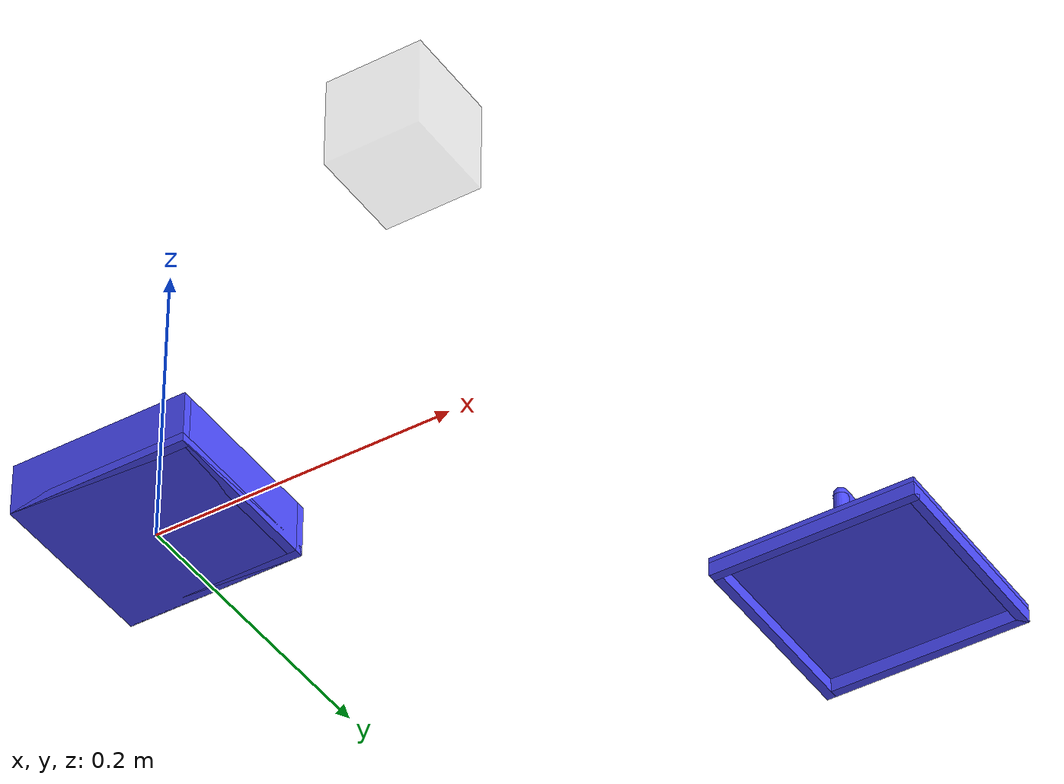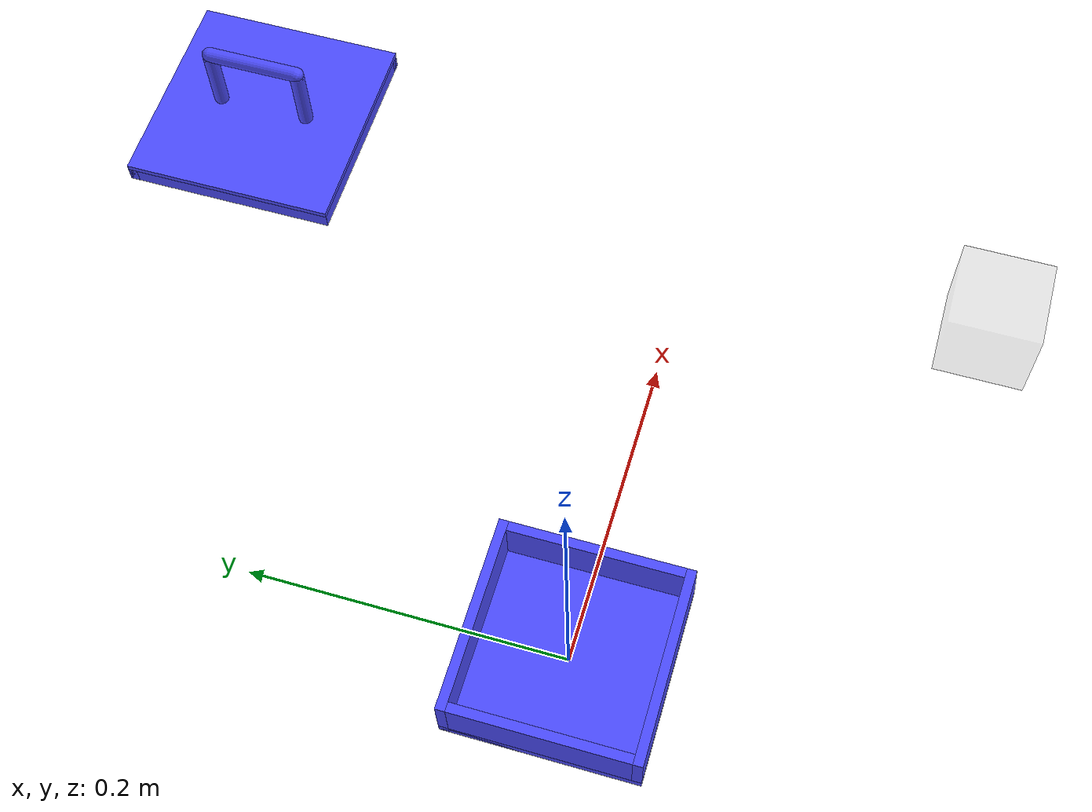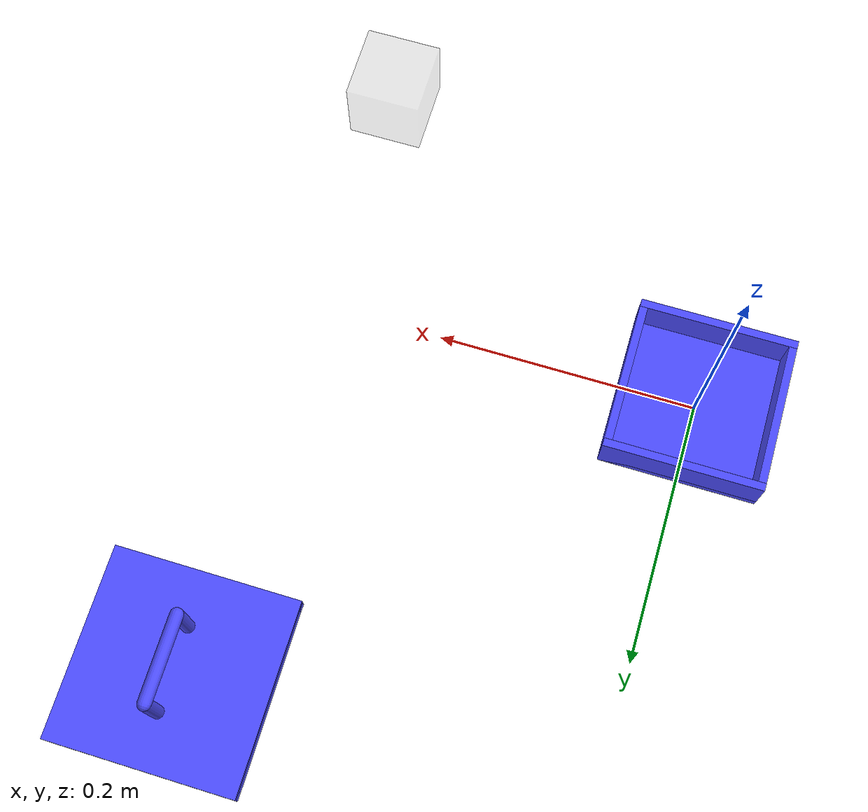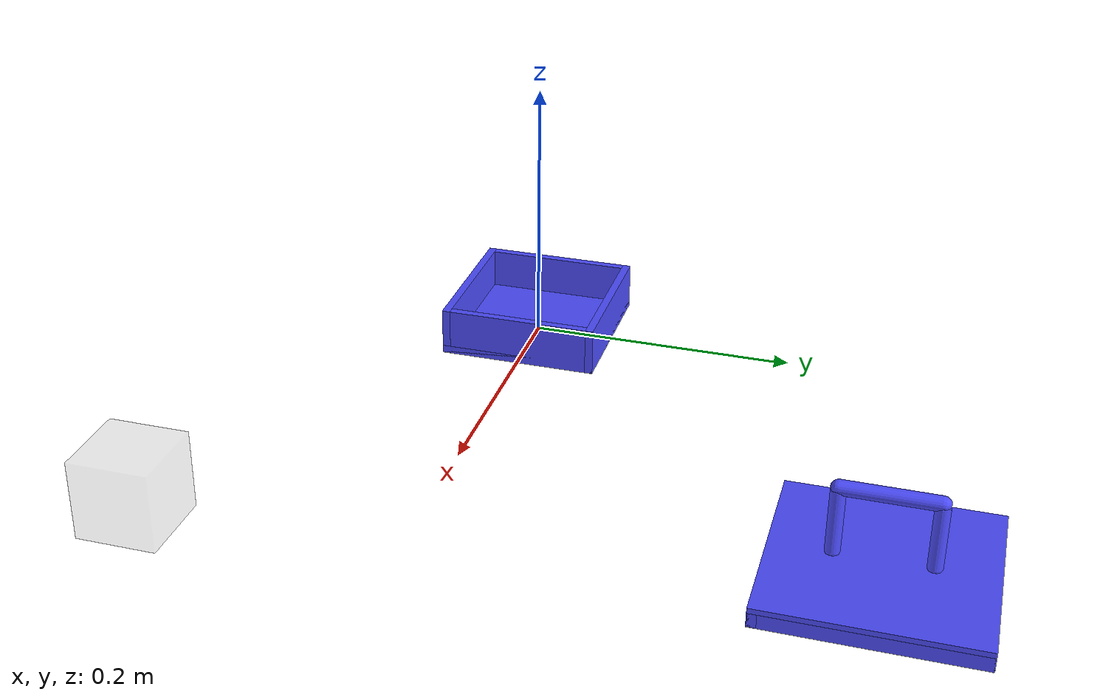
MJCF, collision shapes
<?xml version="1.0" encoding="UTF-8"?>
<mujoco model="box">
    <compiler angle="radian" inertiafromgeom="auto" inertiagrouprange="1 5" />

    <asset>
        <texture name="T_boxmetal" type="cube" file="textures/metal1.png" />
        <texture name="T_boxwood" type="cube" file="textures/wood1.png" />

        <material name="box_col" rgba="0.3 0.3 1.0 0.5" shininess="0" specular="0" />
        <material name="box_red" rgba=".8 0 0 1" shininess="1" reflectance=".7" specular=".5" />
        <material name="box_blue" rgba="0 0 .8 1" shininess="1" reflectance=".7" specular=".5" />
        <material name="box_metal" rgba=".35 .35 .35 1" texture="T_boxmetal" shininess="1" reflectance=".7" specular=".5" />
        <material name="box_wood" texture="T_boxwood" shininess="1" reflectance=".7" specular=".5" />
    </asset>

    <default>
        <default class="box_base">
            <joint armature="0.001" damping="2" limited="true" />
            <geom conaffinity="0" contype="0" group="1" type="mesh" />
            <default class="box_viz">
                <geom condim="4" type="mesh" />
            </default>
            <default class="box_col">
                <geom conaffinity="1" condim="3" contype="0" group="4" material="box_col" solimp="0.99 0.99 0.01" solref="0.01 1" />
            </default>
            <default class="top_col">
                <geom conaffinity="1" condim="4" contype="1" group="4" material="box_col" solimp="0.99 0.99 0.01" solref="0.01 1" />
            </default>
            <site type="sphere" size=".01" rgba="0 1 0 1" group="5" />
        </default>
    </default>

    <asset>
        <mesh file="metaworld/bin/bin.stl" name="bin" scale="0.6 0.6 0.6" />
        <mesh file="metaworld/box/boxtop.stl" name="boxtop" scale="0.6 0.6 0.6" />
        <mesh file="metaworld/box/boxhandle.stl" name="boxhandle" scale="0.6 0.6 0.6" />
    </asset>
    <worldbody>

        <body childclass="box_base" name="box" pos="0 0 0" euler="0 0 0">
            <geom material="box_wood" mesh="bin" pos="0 0 0.018" />
            <geom class="box_col" pos="0 -0.057 0.018" size="0.06 0.003 0.018" type="box" />
            <geom class="box_col" pos="0 0.057 0.018" size="0.06 0.003 0.018" type="box" />
            <geom class="box_col" pos="0.057 0 0.018" size="0.003 0.054 0.018" type="box" />
            <geom class="box_col" pos="-0.057 0 0.018" size="0.003 0.054 0.018" type="box" />
            <geom class="box_col" pos="0 0 0.003" size="0.06 0.06 0.003" type="box" />
        </body>

        <body name="box_lid_0" pos="0.3 0.3 0.039" childclass="box_base">
            <freejoint name="box_lid_joint_0" />
            <geom material="box_wood" mesh="boxtop" pos="0 0 -0.003" />
            <geom material="box_metal" euler="1.57 0 0" mesh="boxhandle" pos="0 0 0.0492" name="box_lid_handle_0" />
            <geom class="top_col" pos="0.066 -0.0 -0.0048" size="0.003 0.069 0.0048" type="box" />
            <geom class="top_col" pos="0.0 -0.0 0.0018" size="0.069 0.069 0.0018" type="box" />
            <geom class="top_col" pos="-0.066 -0.0 -0.0048" size="0.003 0.069 0.0048" type="box" />
            <geom class="top_col" pos="0.0 -0.066 -0.0048" size="0.069 0.003 0.0048" type="box" />
            <geom class="top_col" pos="0.0 0.066 -0.0048" size="0.069 0.003 0.0048" type="box" />
            <geom class="top_col" euler="1.57 0.0 0.0" pos="0 0 0.0492" size="0.0048 0.03" type="capsule" />
            <geom class="top_col" pos="0 -0.03 0.0258" size="0.0048 0.021" type="capsule" />
            <geom class="top_col" pos="0 0.03 0.0258" size="0.0048 0.021" type="capsule" />
            <site name="box_lid_handle_center_0" pos="0 0 0.0492" size="0.005" rgba="0 1 0 1" group="5" />
            <site name="box_lid_center_0" pos="0 0 0" size="0.005" rgba="1 1 1 1" group="5" />
        </body>
        <body name="box_lid_target_0" pos="0.3 -0.2 0.00" mocap="true">
            <geom name="target_box_lid_0" class="box_base" size="0.03 0.03 0.03" type="box" rgba=".5 .5 .5 .2" contype="0" conaffinity="0" group="1" />
        </body>
    </worldbody>
</mujoco>
